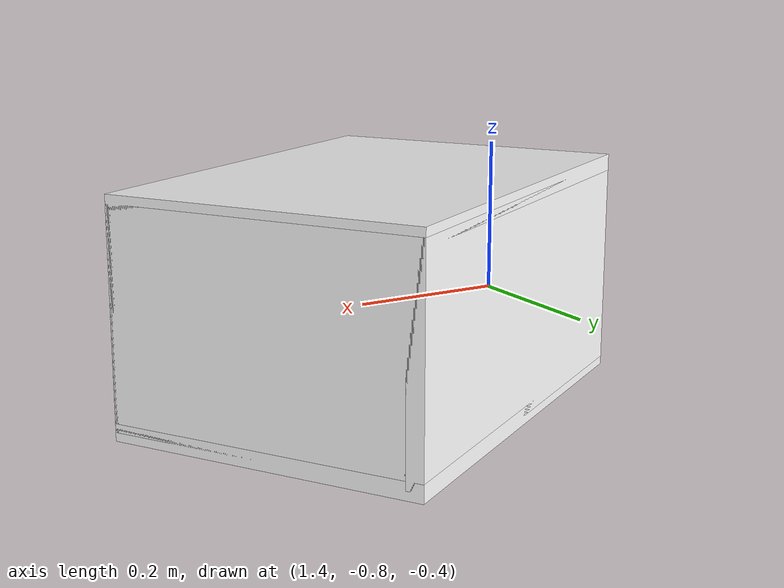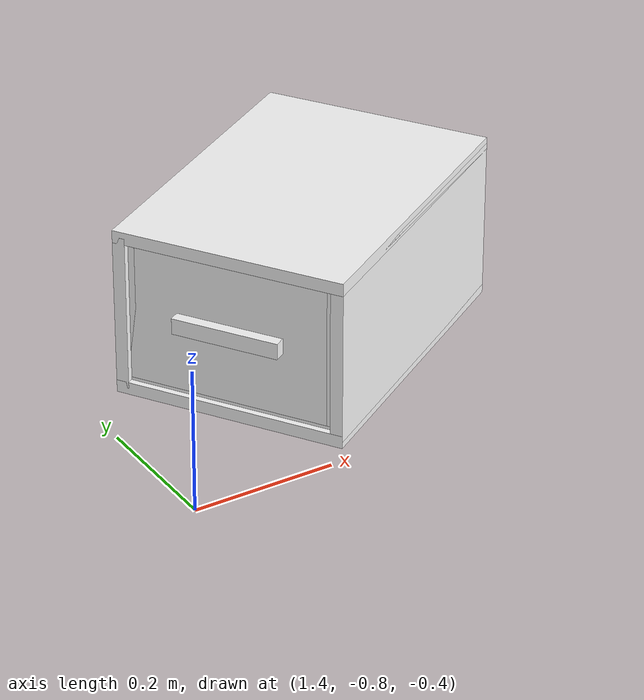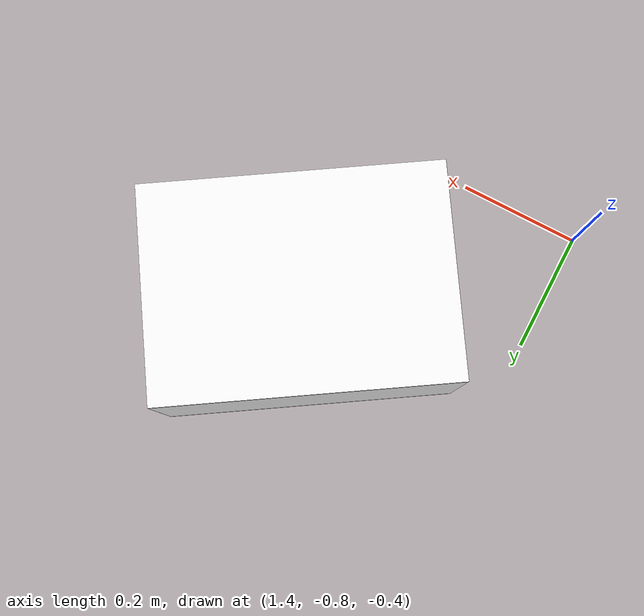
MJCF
<mujoco model="drawer">
        <compiler angle="radian" eulerseq='zxy' />
        <option gravity = "0 0 0" />
        <option>
            <flag contact = "disable"/>
        </option>
        <statistic	extent="1.0" center="0.0 0.0 0.0"/>
        <visual>
            <map fogstart="3" fogend="5" force="0.1" znear=" 0.100000 " zfar=" 12.000000 "/>
        </visual>
        <size njmax="500" nconmax="100" />
        <actuator>
            <velocity joint="drawerJ" name="viva_revolution" kv='10'></velocity>
        </actuator>
        <asset>
            <texture builtin="flat" name="objtex" height="32" width="32" rgb1="1 1 1" type="cube"></texture>
            <texture builtin="flat" name="handletex" height="32" width="32" rgb1="1 1 1" type="cube"></texture>
            <material name="geomObj" shininess="0.03" specular="0.75" texture="objtex"></material>
            <material name="geomHandle" shininess="0.03" specular="0.75" texture="handletex"></material>
        </asset>
        <worldbody>
            <body name="cabinet_bottom" pos= " 1.751614 -0.493320 -0.404552 "  quat= " -0.277444 0.000000 0.000000 0.960742" >
                <inertial pos="0 0 0" mass="1" diaginertia="1 1 1" />
                <geom size= " 0.231759 0.166028 0.008995 "  type="box" material="geomObj" name="b"/>
                <body name="cabinet_left" pos= " 0.000000 -0.157033 0.112586 " >
                    <inertial pos="0 0 0" mass="1" diaginertia="1 1 1" />
                    <geom size= " 0.231759 0.008995 0.112586 "  type="box" material="geomObj" name="c" />
                </body>
                <body name="cabinet_right" pos= " 0.000000 0.157033 0.112586 " >
                    <inertial pos="0 0 0" mass="1" diaginertia="1 1 1" />
                    <geom size= " 0.231759 0.008995 0.112586 "  type="box" material="geomObj" name="d" />
                </body>
                <body name="cabinet_top" pos= " 0.000000 0.000000 0.225173 " >
                    <inertial pos="0 0 0" mass="1" diaginertia="1 1 1" />
                    <geom size= " 0.231759 0.166028 0.008995 "  type="box" material="geomObj" name="e"/>
                </body>
                <body name="cabinet_back" pos= " -0.222764 0.000000 0.112586 "  >
                    <inertial pos="0 0 0" mass="1" diaginertia="1 1 1" />
                    <geom size= " 0.008995 0.166028 0.112586 "  type="box" material="geomObj" name="f" />
                </body>
                <body name="drawer" pos= " 0.000000 0.000000 0.004498 "  >
                    <geom size= " 0.222764 0.157033 0.008995 "  type="box" material="geomObj" name="ddddfadfadsfac" />
                    <joint name="drawerJ" pos="0 0 0" axis="1 0 0" type="slide" limited="true" range= "0  0.34763891994953156 "  />
                    <inertial pos="0 0 0" mass="1" diaginertia="1 1 1" />
                    <body name="drawer_left" pos= " 0.000000 -0.148037 0.112586 " >
                        <inertial pos="0 0 0" mass="1" diaginertia="1 1 1" />
                        <geom size= " 0.222764 0.008995 0.103591 "  type="box" material="geomObj" name="ddc" />
                    </body>
                    <body name="drawer_right" pos= " 0.000000 0.148037 0.112586 " >
                        <inertial pos="0 0 0" mass="1" diaginertia="1 1 1" />
                        <geom size= " 0.222764 0.008995 0.103591 "  type="box" material="geomObj" name="dddd" />
                    </body>
                    <body name="drawer_front" pos= " 0.213769 0.000000 0.112586 " >
                        <inertial pos="0 0 0" mass="1" diaginertia="1 1 1" />
                        <geom size= " 0.008995 0.157033 0.103591 "  type="box" material="geomObj" name="eeeee"/>
                    </body>
                    <body name="drawer_back" pos= " -0.222764 0.000000 0.112586 "  >
                        <inertial pos="0 0 0" mass="1" diaginertia="1 1 1" />
                        <geom size= " 0.008995 0.157033 0.103591 "  type="box" material="geomObj" name="fffff" />
                    </body>
                    <body name="knob" pos= " 0.231759 0.000000 0.112586 " >
                        <inertial pos="0 0 0" mass="0.1" diaginertia="0.1 0.1 0.1" />
                        <geom size= " 0.008028 0.076845 0.011514 "  pos="0 0 0" type="box" material="geomHandle" name="handle"/>
                    </body>
                </body>
            </body>
            <body name="external_camera_body_0" pos="0.0 0 0.00">
                <camera euler="-1.57 1.57 0.0" fovy=" 54.280851 " name="external_camera_0" pos="0.0 0 0"></camera>
                <inertial pos= " 0.00 0.0 0.000000 " mass="1" diaginertia="1 1 1" />
                <joint name="cam_j" pos="0.0 0 0" axis = "1 0 0" type="free" />
            </body>
        </worldbody>
    </mujoco>
